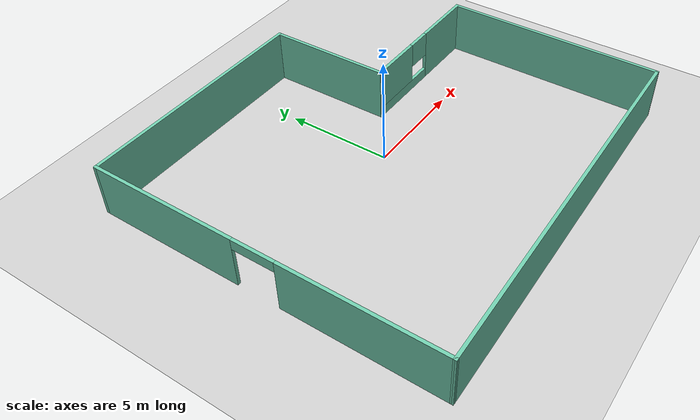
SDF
<sdf version="1.6">
 <world name="default">
  <model name="ground_plane">
   <static>1</static>
   <link name="link">
    <collision name="collision">
     <geometry><plane><normal>0 0 1</normal><size>100 100</size></plane></geometry>
     <surface><friction><ode><mu>100</mu><mu2>50</mu2></ode></friction></surface>
    </collision>
    <visual name="visual">
     <cast_shadows>0</cast_shadows>
     <geometry><plane><normal>0 0 1</normal><size>100 100</size></plane></geometry>
     <material>
      <script><uri>file://media/materials/scripts/gazebo.material</uri><name>Gazebo/Grey</name></script>
     </material>
    </visual>
   </link>
  </model>
  <model name="Building">
   <pose>0.119519 -0.586897 0 0 -0 0</pose>
   <link name="Wall_2">
    <collision name="Wall_2_Collision">
     <geometry><box><size>11.5 0.15 2.5</size></box></geometry>
     <pose>0 0 1.25 0 -0 0</pose>
    </collision>
    <visual name="Wall_2_Visual">
     <pose>0 0 1.25 0 -0 0</pose>
     <geometry><box><size>11.5 0.15 2.5</size></box></geometry>
     <material>
      <script><uri>file://media/materials/scripts/gazebo.material</uri><name>Gazebo/Grey</name></script>
      <ambient>0.435294 0.796078 0.67451 1</ambient>
     </material>
     <meta><layer>0</layer></meta>
    </visual>
    <pose>-3.43932 8.17516 0 0 -0 3.14159</pose>
   </link>
   <link name="Wall_3">
    <pose>-9.11432 0.000163 0 0 0 -1.5708</pose>
    <visual name="Wall_3_Visual_0">
     <pose>-4.69798 0 1.25 0 -0 0</pose>
     <geometry><box><size>7.10403 0.15 2.5</size></box></geometry>
     <material>
      <script><uri>file://media/materials/scripts/gazebo.material</uri><name>Gazebo/Grey</name></script>
      <ambient>0.435294 0.796078 0.67451 1</ambient>
     </material>
     <meta><layer>0</layer></meta>
    </visual>
    <collision name="Wall_3_Collision_0">
     <geometry><box><size>7.10403 0.15 2.5</size></box></geometry>
     <pose>-4.69798 0 1.25 0 -0 0</pose>
    </collision>
    <visual name="Wall_3_Visual_1">
     <pose>4.55202 0 1.25 0 -0 0</pose>
     <geometry><box><size>7.39597 0.15 2.5</size></box></geometry>
     <material>
      <script><uri>file://media/materials/scripts/gazebo.material</uri><name>Gazebo/Grey</name></script>
      <ambient>0.435294 0.796078 0.67451 1</ambient>
     </material>
     <meta><layer>0</layer></meta>
    </visual>
    <collision name="Wall_3_Collision_1">
     <geometry><box><size>7.39597 0.15 2.5</size></box></geometry>
     <pose>4.55202 0 1.25 0 -0 0</pose>
    </collision>
    <visual name="Wall_3_Visual_2">
     <pose>-0.145968 0 2.25 0 -0 0</pose>
     <geometry><box><size>2 0.15 0.5</size></box></geometry>
     <material>
      <script><uri>file://media/materials/scripts/gazebo.material</uri><name>Gazebo/Grey</name></script>
      <ambient>0.435294 0.796078 0.67451 1</ambient>
     </material>
     <meta><layer>0</layer></meta>
    </visual>
    <collision name="Wall_3_Collision_2">
     <geometry><box><size>2 0.15 0.5</size></box></geometry>
     <pose>-0.145968 0 2.25 0 -0 0</pose>
    </collision>
   </link>
   <link name="Wall_4">
    <collision name="Wall_4_Collision">
     <geometry><box><size>18.3794 0.15 2.5</size></box></geometry>
     <pose>0 0 1.25 0 -0 0</pose>
    </collision>
    <visual name="Wall_4_Visual">
     <pose>0 0 1.25 0 -0 0</pose>
     <geometry><box><size>18.3794 0.15 2.5</size></box></geometry>
     <material>
      <script><uri>file://media/materials/scripts/gazebo.material</uri><name>Gazebo/Grey</name></script>
      <ambient>0.435294 0.796078 0.67451 1</ambient>
     </material>
     <meta><layer>0</layer></meta>
    </visual>
    <pose>0 -8.09029 0 0 -0 0.009276</pose>
   </link>
   <link name="Wall_6">
    <collision name="Wall_6_Collision">
     <geometry><box><size>10.5 0.15 2.5</size></box></geometry>
     <pose>0 0 1.25 0 -0 0</pose>
    </collision>
    <visual name="Wall_6_Visual">
     <pose>0 0 1.25 0 -0 0</pose>
     <geometry><box><size>10.5 0.15 2.5</size></box></geometry>
     <material>
      <script><uri>file://media/materials/scripts/gazebo.material</uri><name>Gazebo/Grey</name></script>
      <ambient>0.435294 0.796078 0.67451 1</ambient>
     </material>
     <meta><layer>0</layer></meta>
    </visual>
    <pose>9.11432 -2.83075 0 0 -0 1.5708</pose>
   </link>
   <link name="Wall_7">
    <pose>5.68932 2.38471 0 0 -0 3.14159</pose>
    <visual name="Wall_7_Visual_0">
     <pose>-1.93487 0 1.25 0 -0 0</pose>
     <geometry><box><size>3.13027 0.15 2.5</size></box></geometry>
     <material>
      <script><uri>file://media/materials/scripts/gazebo.material</uri><name>Gazebo/Grey</name></script>
      <ambient>0.435294 0.796078 0.67451 1</ambient>
     </material>
     <meta><layer>0</layer></meta>
    </visual>
    <collision name="Wall_7_Collision_0">
     <geometry><box><size>3.13027 0.15 2.5</size></box></geometry>
     <pose>-1.93487 0 1.25 0 -0 0</pose>
    </collision>
    <visual name="Wall_7_Visual_1">
     <pose>1.56513 0 0.25 0 -0 0</pose>
     <geometry><box><size>3.86973 0.15 0.5</size></box></geometry>
     <material>
      <script><uri>file://media/materials/scripts/gazebo.material</uri><name>Gazebo/Grey</name></script>
      <ambient>0.435294 0.796078 0.67451 1</ambient>
     </material>
     <meta><layer>0</layer></meta>
    </visual>
    <collision name="Wall_7_Collision_1">
     <geometry><box><size>3.86973 0.15 0.5</size></box></geometry>
     <pose>1.56513 0 0.25 0 -0 0</pose>
    </collision>
    <visual name="Wall_7_Visual_2">
     <pose>2.16513 0 1.5 0 -0 0</pose>
     <geometry><box><size>2.66974 0.15 2</size></box></geometry>
     <material>
      <script><uri>file://media/materials/scripts/gazebo.material</uri><name>Gazebo/Grey</name></script>
      <ambient>0.435294 0.796078 0.67451 1</ambient>
     </material>
     <meta><layer>0</layer></meta>
    </visual>
    <collision name="Wall_7_Collision_2">
     <geometry><box><size>2.66974 0.15 2</size></box></geometry>
     <pose>2.16513 0 1.5 0 -0 0</pose>
    </collision>
    <visual name="Wall_7_Visual_3">
     <pose>0.230265 0 1.9 0 -0 0</pose>
     <geometry><box><size>1.2 0.15 1.2</size></box></geometry>
     <material>
      <script><uri>file://media/materials/scripts/gazebo.material</uri><name>Gazebo/Grey</name></script>
      <ambient>0.435294 0.796078 0.67451 1</ambient>
     </material>
     <meta><layer>0</layer></meta>
    </visual>
    <collision name="Wall_7_Collision_3">
     <geometry><box><size>1.2 0.15 1.2</size></box></geometry>
     <pose>0.230265 0 1.9 0 -0 0</pose>
    </collision>
   </link>
   <link name="Wall_8">
    <collision name="Wall_8_Collision">
     <geometry><box><size>5.98098 0.15 2.5</size></box></geometry>
     <pose>0 0 1.25 0 -0 0</pose>
    </collision>
    <visual name="Wall_8_Visual">
     <pose>0 0 1.25 0 -0 0</pose>
     <geometry><box><size>5.98098 0.15 2.5</size></box></geometry>
     <material>
      <script><uri>file://media/materials/scripts/gazebo.material</uri><name>Gazebo/Grey</name></script>
      <ambient>0.435294 0.796078 0.67451 1</ambient>
     </material>
     <meta><layer>0</layer></meta>
    </visual>
    <pose>2.25 5.25971 0 0 -0 1.57571</pose>
   </link>
   <static>1</static>
  </model>
 </world>
</sdf>
